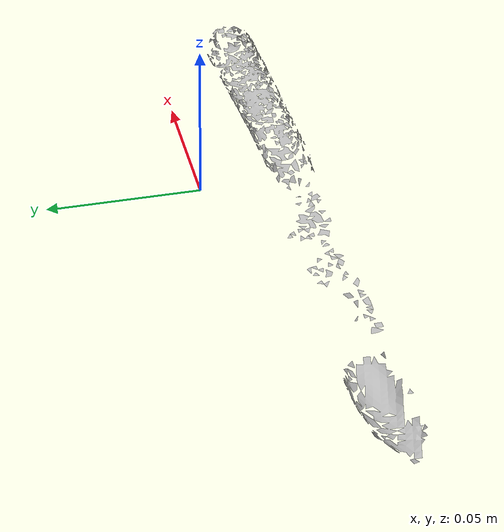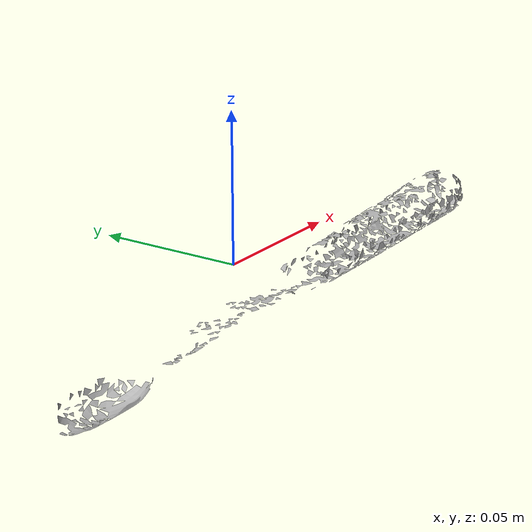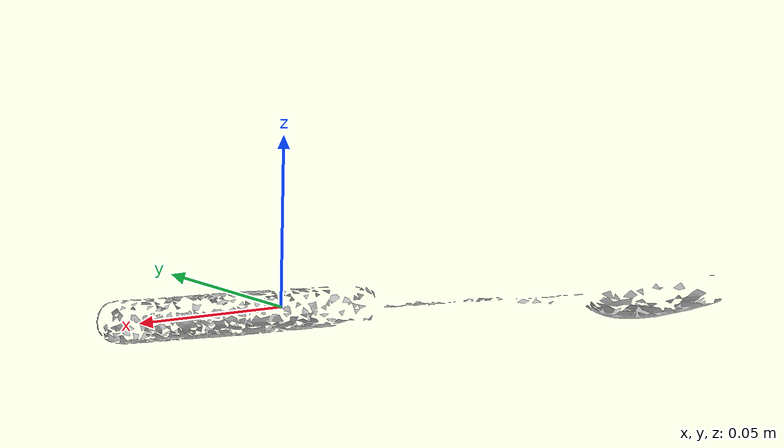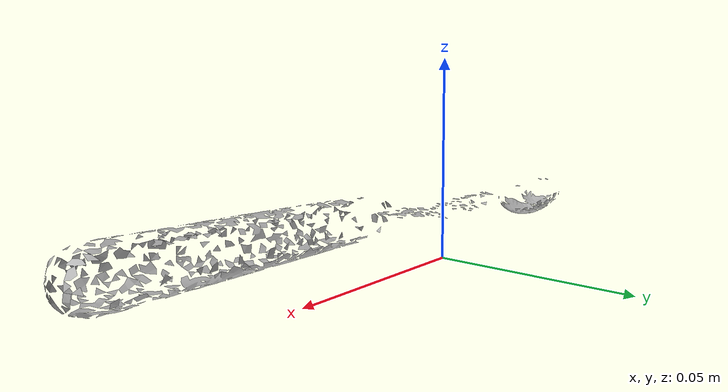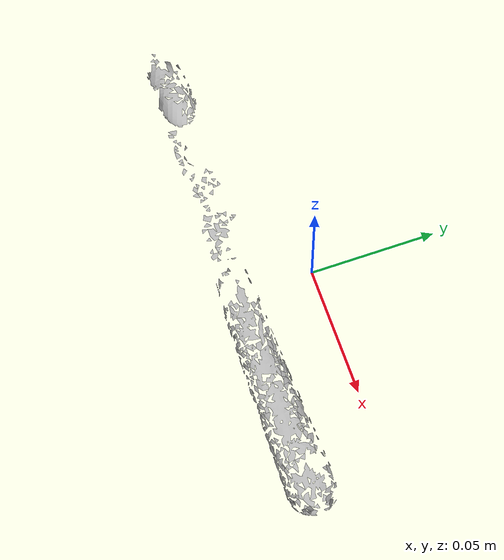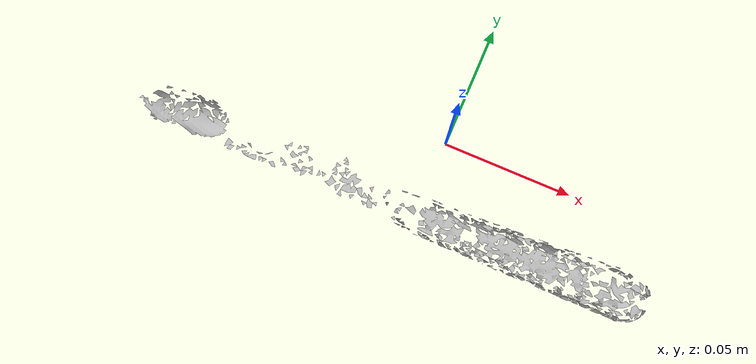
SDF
<?xml version="1.0" ?>
<sdf version="1.4">
  <model name='ycb_032_knife'>
    <link name='body'>
      <inertial>
        <mass>0.031</mass>
        <pose>0.0084450761539 -0.0290926313873 0.0050003858301 0 0 0</pose>
        <inertia>
          <ixx>1.12290664972e-06</ixx>
          <ixy>5.66844037917e-07</ixy>
          <ixz>-5.82460384599e-06</ixz>
          <iyy>0.000116295384783</iyy>
          <iyz>8.0489251476e-08</iyz>
          <izz>0.000116226508775</izz>
        </inertia>
      </inertial>
      <visual name='ycb_032_knife_visual'>
        <pose>0 0 0 0 0 0</pose>
        <geometry>
          <mesh>
            <uri>model://ycb_032_knife/meshes/textured.dae</uri>
          </mesh>
        </geometry>
      </visual>
      <collision name='ycb_032_knife_collision'>
        <pose>0 0 0 0 0 0</pose>
        <geometry>
          <mesh>
            <uri>model://ycb_032_knife/meshes/nontextured.stl</uri>
          </mesh>
        </geometry>
        <max_contacts>10</max_contacts>
      </collision>
    </link>
  </model>
</sdf>
